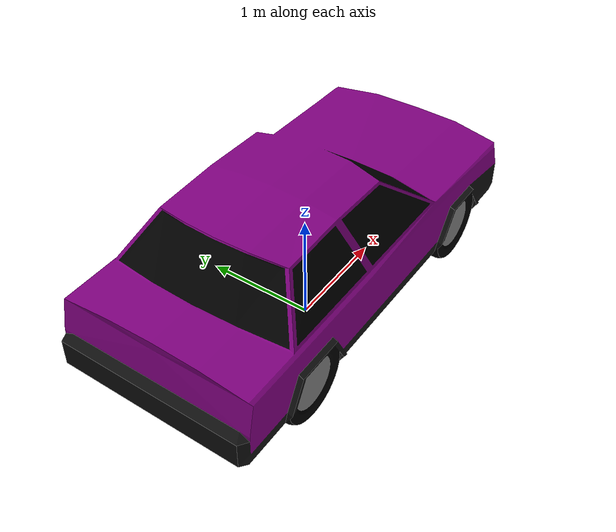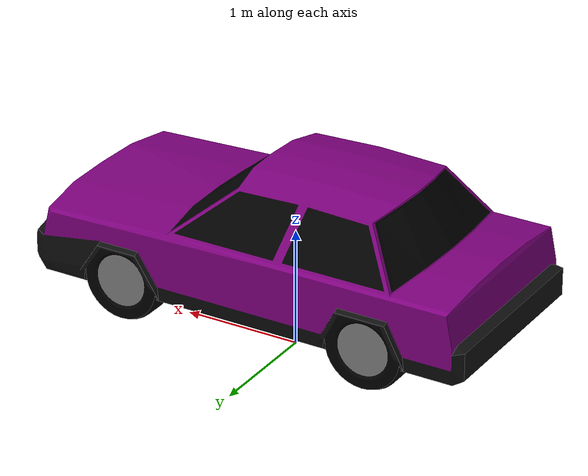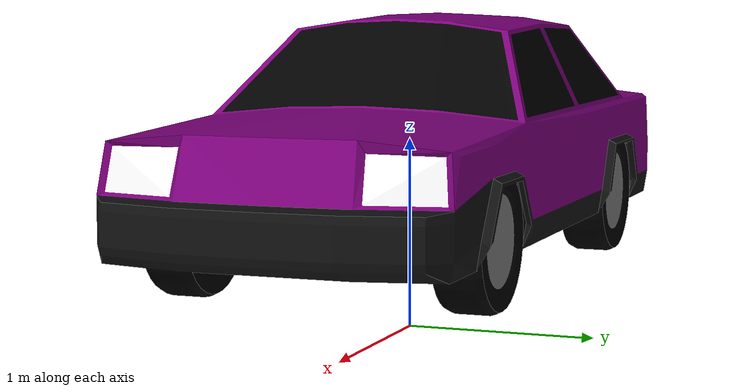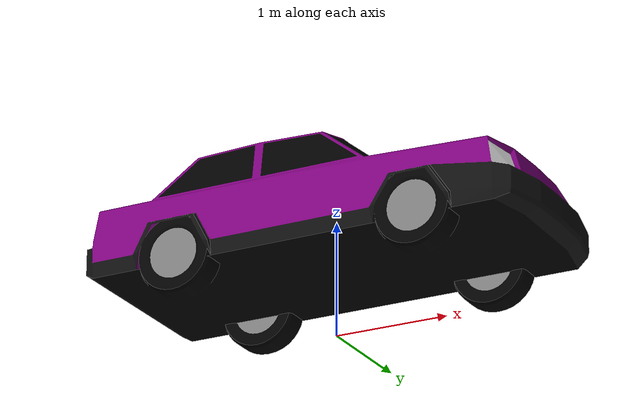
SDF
<?xml version="1.0" ?>
<sdf version="1.10">
  <model name="base_car">
    <static>false</static>
    <pose>0 0 0.3 0 0 0</pose>
    <link name="base_link">
      <kinematic>true</kinematic>
      <gravity>false</gravity>
      <inertial>
        <mass>1.0</mass>
        <inertia>
          <ixx>1.0</ixx>
          <iyy>1.0</iyy>
          <izz>1.0</izz>
          <ixy>0.0</ixy>
          <ixz>0.0</ixz>
          <iyz>0.0</iyz>
        </inertia>
      </inertial>
      <visual name="visual">
        <pose>0 0 0 0 0 1.5708</pose>
        <geometry>
          <mesh>
            <uri>file:///home/aeris/sim_environments/3d_assets/purple_car.dae</uri>
            <scale>0.85 0.85 0.85</scale>
          </mesh>
        </geometry>
      </visual>
    </link>
  </model>
</sdf>
